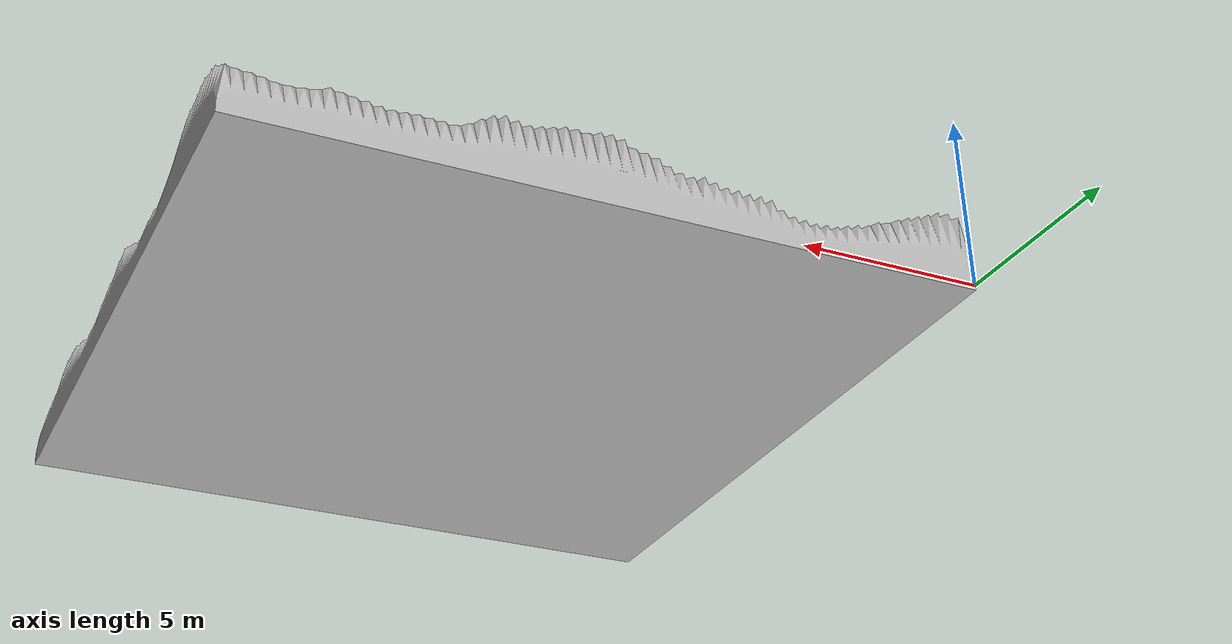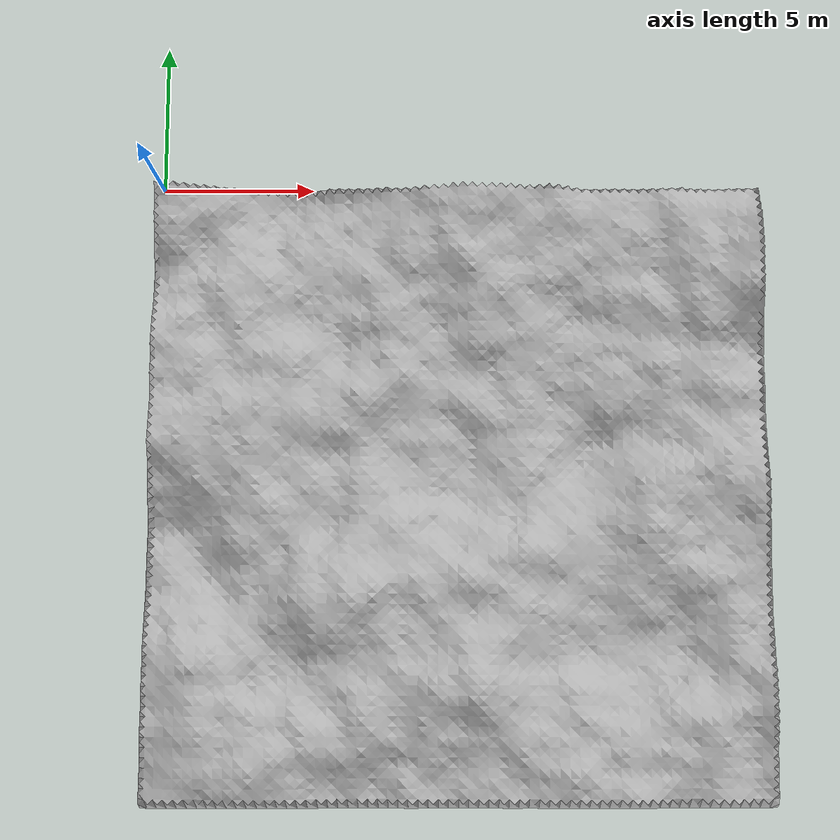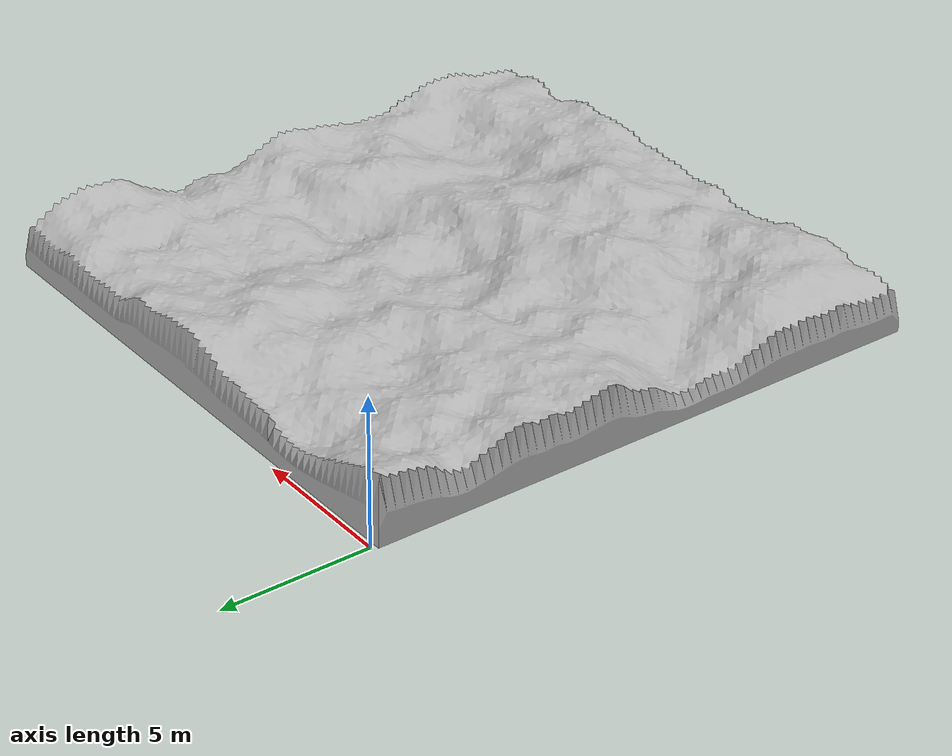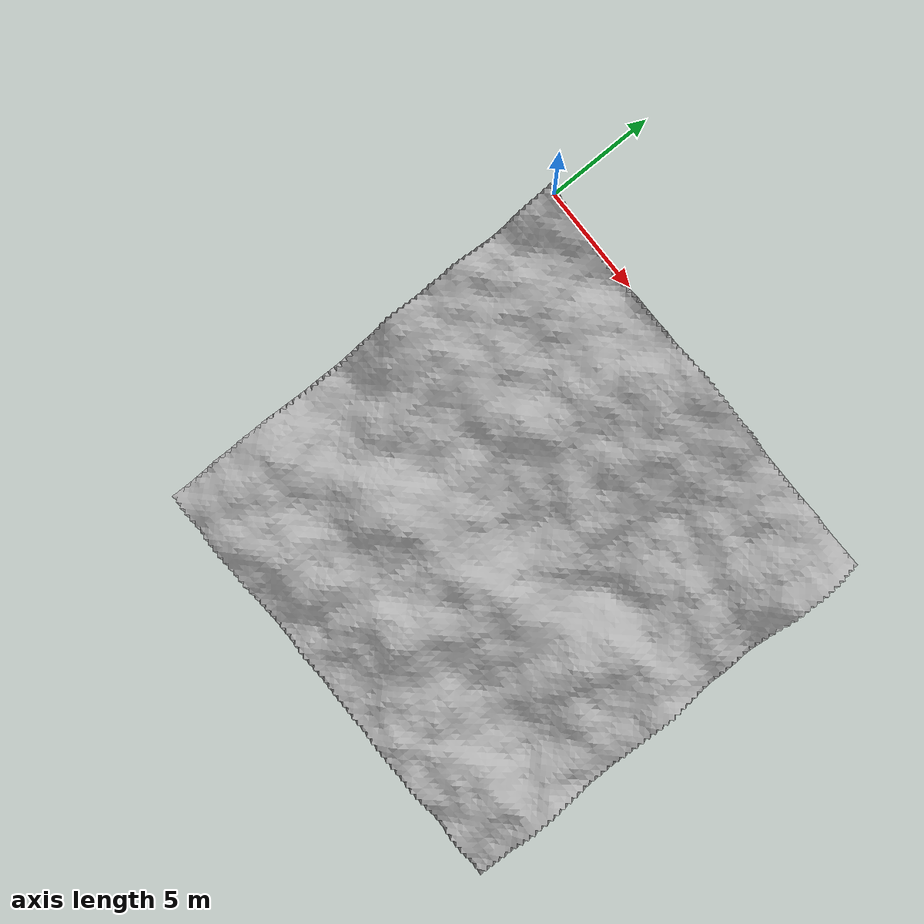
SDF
<?xml version="1.0" ?>
<sdf version="1.6">
  <model name="hill1">
    <static>true</static> <!-- Set to true if the model should not move -->
    <pose>0 0 0 0 0 0</pose>

    <!--z offset is -15 for full scale-->

    <link name="link">
      <collision name="hill1_collision">
        <geometry>

          <mesh>
            <uri>model://meshes/hills.stl</uri>
            <scale>1 1 1</scale>
          </mesh>
        </geometry>
      </collision>
      <visual name="hill1_visual">
        <geometry>

          <mesh>

            <uri>model://meshes/hills.stl</uri>
            <scale>1 1 1</scale>
          </mesh>
        </geometry>
        <material>
          <script>
            <uri>model://materials/scripts/sand_pebbles.material</uri>
            <name>custom_ground/Image</name>
          </script>
        </material>
      </visual>
    </link>
  </model>
</sdf>
